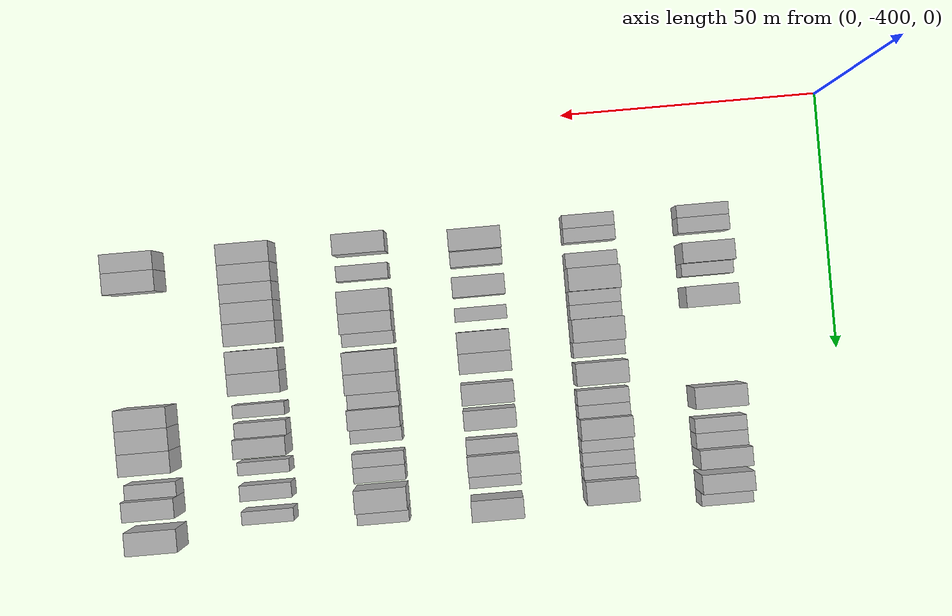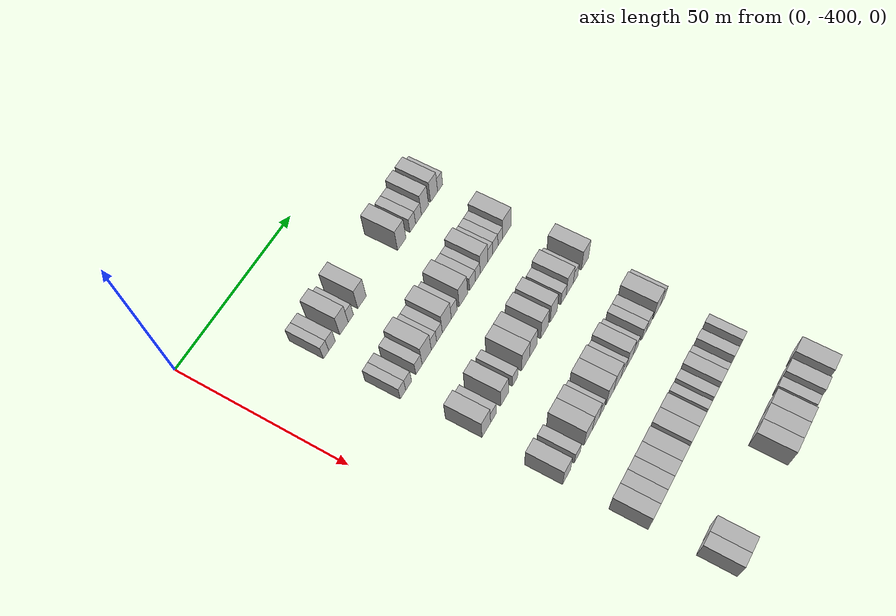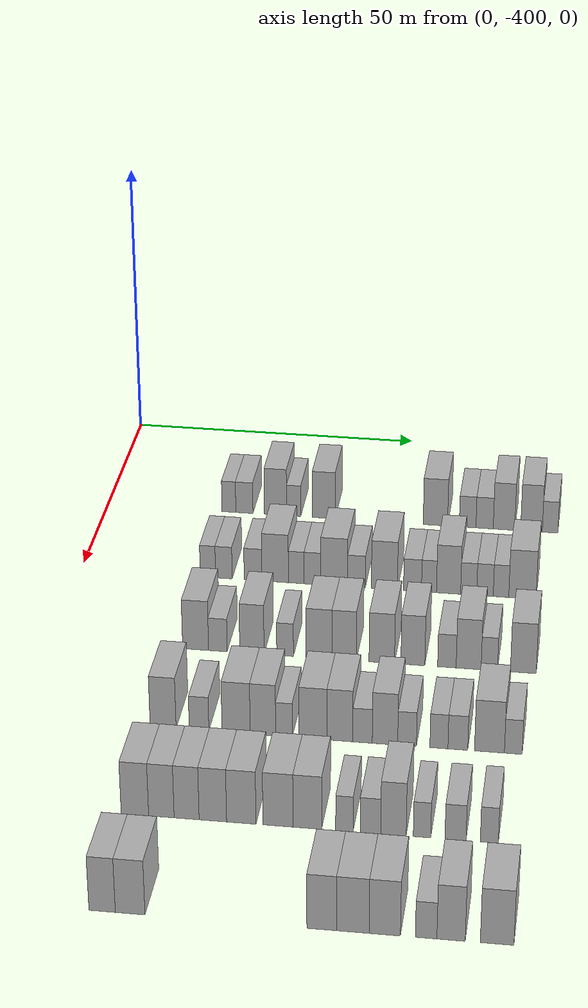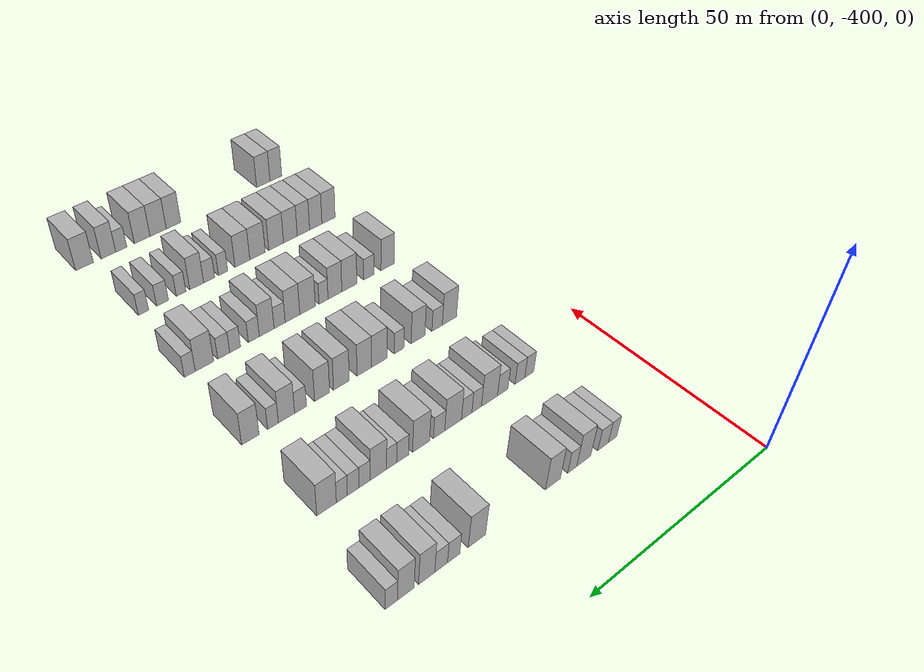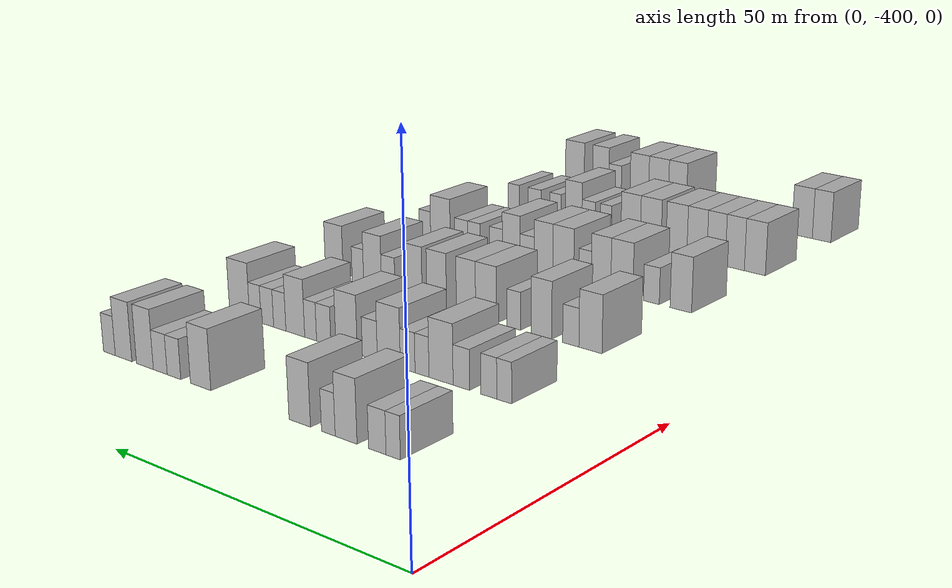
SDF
<sdf version="1.6">
 <world name="default">
  <model name="building_1">
   <static>1</static>
   <pose>25.0000 -378.7936 0 0.000000 0.000000 0.000000</pose>
   <link name="link">
    <pose>0 0 3.00 0 0 0</pose>
    <collision name="collision"><geometry><box><size>10.0000 2.4128 6.0000</size></box></geometry></collision>
    <visual name="visual">
     <cast_shadows>0</cast_shadows>
     <geometry><box><size>10.0000 2.4128 6.0000</size></box></geometry>
     <material>
      <script>
       <uri>model://HANNAS_wall/materials/scripts</uri>
       <uri>model://HANNAS_wall/materials/textures</uri>
       <name>vrc/HANNAS_wall</name>
      </script>
     </material>
    </visual>
   </link>
  </model>
  <model name="building_2">
   <static>1</static>
   <pose>25.0000 -376.0949 0 0.000000 0.000000 0.000000</pose>
   <link name="link">
    <pose>0 0 3.00 0 0 0</pose>
    <collision name="collision"><geometry><box><size>10.0000 2.9847 6.0000</size></box></geometry></collision>
    <visual name="visual">
     <cast_shadows>0</cast_shadows>
     <geometry><box><size>10.0000 2.9847 6.0000</size></box></geometry>
     <material>
      <script>
       <uri>model://HANNAS_wall/materials/scripts</uri>
       <uri>model://HANNAS_wall/materials/textures</uri>
       <name>vrc/HANNAS_wall</name>
      </script>
     </material>
    </visual>
   </link>
  </model>
  <model name="building_3">
   <static>1</static>
   <pose>25.0000 -370.6776 0 0.000000 0.000000 0.000000</pose>
   <link name="link">
    <pose>0 0 4.50 0 0 0</pose>
    <collision name="collision"><geometry><box><size>10.0000 3.8498 9.0000</size></box></geometry></collision>
    <visual name="visual">
     <cast_shadows>0</cast_shadows>
     <geometry><box><size>10.0000 3.8498 9.0000</size></box></geometry>
     <material>
      <script>
       <uri>model://HANNAS_wall/materials/scripts</uri>
       <uri>model://HANNAS_wall/materials/textures</uri>
       <name>vrc/HANNAS_wall</name>
      </script>
     </material>
    </visual>
   </link>
  </model>
  <model name="building_4">
   <static>1</static>
   <pose>25.0000 -367.5244 0 0.000000 0.000000 0.000000</pose>
   <link name="link">
    <pose>0 0 3.00 0 0 0</pose>
    <collision name="collision"><geometry><box><size>10.0000 2.4567 6.0000</size></box></geometry></collision>
    <visual name="visual">
     <cast_shadows>0</cast_shadows>
     <geometry><box><size>10.0000 2.4567 6.0000</size></box></geometry>
     <material>
      <script>
       <uri>model://HANNAS_wall/materials/scripts</uri>
       <uri>model://HANNAS_wall/materials/textures</uri>
       <name>vrc/HANNAS_wall</name>
      </script>
     </material>
    </visual>
   </link>
  </model>
  <model name="building_5">
   <static>1</static>
   <pose>25.0000 -362.3169 0 0.000000 0.000000 0.000000</pose>
   <link name="link">
    <pose>0 0 4.50 0 0 0</pose>
    <collision name="collision"><geometry><box><size>10.0000 3.9582 9.0000</size></box></geometry></collision>
    <visual name="visual">
     <cast_shadows>0</cast_shadows>
     <geometry><box><size>10.0000 3.9582 9.0000</size></box></geometry>
     <material>
      <script>
       <uri>model://HANNAS_wall/materials/scripts</uri>
       <uri>model://HANNAS_wall/materials/textures</uri>
       <name>vrc/HANNAS_wall</name>
      </script>
     </material>
    </visual>
   </link>
  </model>
  <model name="building_6">
   <static>1</static>
   <pose>25.0000 -343.0834 0 0.000000 0.000000 0.000000</pose>
   <link name="link">
    <pose>0 0 4.50 0 0 0</pose>
    <collision name="collision"><geometry><box><size>10.0000 4.1696 9.0000</size></box></geometry></collision>
    <visual name="visual">
     <cast_shadows>0</cast_shadows>
     <geometry><box><size>10.0000 4.1696 9.0000</size></box></geometry>
     <material>
      <script>
       <uri>model://HANNAS_wall/materials/scripts</uri>
       <uri>model://HANNAS_wall/materials/textures</uri>
       <name>vrc/HANNAS_wall</name>
      </script>
     </material>
    </visual>
   </link>
  </model>
  <model name="building_7">
   <static>1</static>
   <pose>25.0000 -337.5712 0 0.000000 0.000000 0.000000</pose>
   <link name="link">
    <pose>0 0 3.00 0 0 0</pose>
    <collision name="collision"><geometry><box><size>10.0000 2.8549 6.0000</size></box></geometry></collision>
    <visual name="visual">
     <cast_shadows>0</cast_shadows>
     <geometry><box><size>10.0000 2.8549 6.0000</size></box></geometry>
     <material>
      <script>
       <uri>model://HANNAS_wall/materials/scripts</uri>
       <uri>model://HANNAS_wall/materials/textures</uri>
       <name>vrc/HANNAS_wall</name>
      </script>
     </material>
    </visual>
   </link>
  </model>
  <model name="building_8">
   <static>1</static>
   <pose>25.0000 -334.6668 0 0.000000 0.000000 0.000000</pose>
   <link name="link">
    <pose>0 0 3.00 0 0 0</pose>
    <collision name="collision"><geometry><box><size>10.0000 2.9538 6.0000</size></box></geometry></collision>
    <visual name="visual">
     <cast_shadows>0</cast_shadows>
     <geometry><box><size>10.0000 2.9538 6.0000</size></box></geometry>
     <material>
      <script>
       <uri>model://HANNAS_wall/materials/scripts</uri>
       <uri>model://HANNAS_wall/materials/textures</uri>
       <name>vrc/HANNAS_wall</name>
      </script>
     </material>
    </visual>
   </link>
  </model>
  <model name="building_9">
   <static>1</static>
   <pose>25.0000 -331.3615 0 0.000000 0.000000 0.000000</pose>
   <link name="link">
    <pose>0 0 4.50 0 0 0</pose>
    <collision name="collision"><geometry><box><size>10.0000 3.6569 9.0000</size></box></geometry></collision>
    <visual name="visual">
     <cast_shadows>0</cast_shadows>
     <geometry><box><size>10.0000 3.6569 9.0000</size></box></geometry>
     <material>
      <script>
       <uri>model://HANNAS_wall/materials/scripts</uri>
       <uri>model://HANNAS_wall/materials/textures</uri>
       <name>vrc/HANNAS_wall</name>
      </script>
     </material>
    </visual>
   </link>
  </model>
  <model name="building_10">
   <static>1</static>
   <pose>25.0000 -326.6936 0 0.000000 0.000000 0.000000</pose>
   <link name="link">
    <pose>0 0 4.50 0 0 0</pose>
    <collision name="collision"><geometry><box><size>10.0000 3.6789 9.0000</size></box></geometry></collision>
    <visual name="visual">
     <cast_shadows>0</cast_shadows>
     <geometry><box><size>10.0000 3.6789 9.0000</size></box></geometry>
     <material>
      <script>
       <uri>model://HANNAS_wall/materials/scripts</uri>
       <uri>model://HANNAS_wall/materials/textures</uri>
       <name>vrc/HANNAS_wall</name>
      </script>
     </material>
    </visual>
   </link>
  </model>
  <model name="building_11">
   <static>1</static>
   <pose>25.0000 -323.5289 0 0.000000 0.000000 0.000000</pose>
   <link name="link">
    <pose>0 0 3.00 0 0 0</pose>
    <collision name="collision"><geometry><box><size>10.0000 2.6506 6.0000</size></box></geometry></collision>
    <visual name="visual">
     <cast_shadows>0</cast_shadows>
     <geometry><box><size>10.0000 2.6506 6.0000</size></box></geometry>
     <material>
      <script>
       <uri>model://HANNAS_wall/materials/scripts</uri>
       <uri>model://HANNAS_wall/materials/textures</uri>
       <name>vrc/HANNAS_wall</name>
      </script>
     </material>
    </visual>
   </link>
  </model>
  <model name="building_186">
   <static>1</static>
   <pose>47.0000 -378.7192 0 0.000000 0.000000 0.000000</pose>
   <link name="link">
    <pose>0 0 3.00 0 0 0</pose>
    <collision name="collision"><geometry><box><size>10.0000 2.5617 6.0000</size></box></geometry></collision>
    <visual name="visual">
     <cast_shadows>0</cast_shadows>
     <geometry><box><size>10.0000 2.5617 6.0000</size></box></geometry>
     <material>
      <script>
       <uri>model://HANNAS_wall/materials/scripts</uri>
       <uri>model://HANNAS_wall/materials/textures</uri>
       <name>vrc/HANNAS_wall</name>
      </script>
     </material>
    </visual>
   </link>
  </model>
  <model name="building_187">
   <static>1</static>
   <pose>47.0000 -376.0518 0 0.000000 0.000000 0.000000</pose>
   <link name="link">
    <pose>0 0 3.00 0 0 0</pose>
    <collision name="collision"><geometry><box><size>10.0000 2.7729 6.0000</size></box></geometry></collision>
    <visual name="visual">
     <cast_shadows>0</cast_shadows>
     <geometry><box><size>10.0000 2.7729 6.0000</size></box></geometry>
     <material>
      <script>
       <uri>model://HANNAS_wall/materials/scripts</uri>
       <uri>model://HANNAS_wall/materials/textures</uri>
       <name>vrc/HANNAS_wall</name>
      </script>
     </material>
    </visual>
   </link>
  </model>
  <model name="building_188">
   <static>1</static>
   <pose>47.0000 -371.1877 0 0.000000 0.000000 0.000000</pose>
   <link name="link">
    <pose>0 0 3.00 0 0 0</pose>
    <collision name="collision"><geometry><box><size>10.0000 2.9553 6.0000</size></box></geometry></collision>
    <visual name="visual">
     <cast_shadows>0</cast_shadows>
     <geometry><box><size>10.0000 2.9553 6.0000</size></box></geometry>
     <material>
      <script>
       <uri>model://HANNAS_wall/materials/scripts</uri>
       <uri>model://HANNAS_wall/materials/textures</uri>
       <name>vrc/HANNAS_wall</name>
      </script>
     </material>
    </visual>
   </link>
  </model>
  <model name="building_189">
   <static>1</static>
   <pose>47.0000 -367.5111 0 0.000000 0.000000 0.000000</pose>
   <link name="link">
    <pose>0 0 4.50 0 0 0</pose>
    <collision name="collision"><geometry><box><size>10.0000 4.3981 9.0000</size></box></geometry></collision>
    <visual name="visual">
     <cast_shadows>0</cast_shadows>
     <geometry><box><size>10.0000 4.3981 9.0000</size></box></geometry>
     <material>
      <script>
       <uri>model://HANNAS_wall/materials/scripts</uri>
       <uri>model://HANNAS_wall/materials/textures</uri>
       <name>vrc/HANNAS_wall</name>
      </script>
     </material>
    </visual>
   </link>
  </model>
  <model name="building_190">
   <static>1</static>
   <pose>47.0000 -364.0126 0 0.000000 0.000000 0.000000</pose>
   <link name="link">
    <pose>0 0 3.00 0 0 0</pose>
    <collision name="collision"><geometry><box><size>10.0000 2.5988 6.0000</size></box></geometry></collision>
    <visual name="visual">
     <cast_shadows>0</cast_shadows>
     <geometry><box><size>10.0000 2.5988 6.0000</size></box></geometry>
     <material>
      <script>
       <uri>model://HANNAS_wall/materials/scripts</uri>
       <uri>model://HANNAS_wall/materials/textures</uri>
       <name>vrc/HANNAS_wall</name>
      </script>
     </material>
    </visual>
   </link>
  </model>
  <model name="building_191">
   <static>1</static>
   <pose>47.0000 -361.3273 0 0.000000 0.000000 0.000000</pose>
   <link name="link">
    <pose>0 0 3.00 0 0 0</pose>
    <collision name="collision"><geometry><box><size>10.0000 2.7719 6.0000</size></box></geometry></collision>
    <visual name="visual">
     <cast_shadows>0</cast_shadows>
     <geometry><box><size>10.0000 2.7719 6.0000</size></box></geometry>
     <material>
      <script>
       <uri>model://HANNAS_wall/materials/scripts</uri>
       <uri>model://HANNAS_wall/materials/textures</uri>
       <name>vrc/HANNAS_wall</name>
      </script>
     </material>
    </visual>
   </link>
  </model>
  <model name="building_192">
   <static>1</static>
   <pose>47.0000 -357.7341 0 0.000000 0.000000 0.000000</pose>
   <link name="link">
    <pose>0 0 4.50 0 0 0</pose>
    <collision name="collision"><geometry><box><size>10.0000 4.4146 9.0000</size></box></geometry></collision>
    <visual name="visual">
     <cast_shadows>0</cast_shadows>
     <geometry><box><size>10.0000 4.4146 9.0000</size></box></geometry>
     <material>
      <script>
       <uri>model://HANNAS_wall/materials/scripts</uri>
       <uri>model://HANNAS_wall/materials/textures</uri>
       <name>vrc/HANNAS_wall</name>
      </script>
     </material>
    </visual>
   </link>
  </model>
  <model name="building_193">
   <static>1</static>
   <pose>47.0000 -354.0647 0 0.000000 0.000000 0.000000</pose>
   <link name="link">
    <pose>0 0 3.00 0 0 0</pose>
    <collision name="collision"><geometry><box><size>10.0000 2.9242 6.0000</size></box></geometry></collision>
    <visual name="visual">
     <cast_shadows>0</cast_shadows>
     <geometry><box><size>10.0000 2.9242 6.0000</size></box></geometry>
     <material>
      <script>
       <uri>model://HANNAS_wall/materials/scripts</uri>
       <uri>model://HANNAS_wall/materials/textures</uri>
       <name>vrc/HANNAS_wall</name>
      </script>
     </material>
    </visual>
   </link>
  </model>
  <model name="building_194">
   <static>1</static>
   <pose>47.0000 -349.4579 0 0.000000 0.000000 0.000000</pose>
   <link name="link">
    <pose>0 0 4.50 0 0 0</pose>
    <collision name="collision"><geometry><box><size>10.0000 4.2893 9.0000</size></box></geometry></collision>
    <visual name="visual">
     <cast_shadows>0</cast_shadows>
     <geometry><box><size>10.0000 4.2893 9.0000</size></box></geometry>
     <material>
      <script>
       <uri>model://HANNAS_wall/materials/scripts</uri>
       <uri>model://HANNAS_wall/materials/textures</uri>
       <name>vrc/HANNAS_wall</name>
      </script>
     </material>
    </visual>
   </link>
  </model>
  <model name="building_195">
   <static>1</static>
   <pose>47.0000 -344.8406 0 0.000000 0.000000 0.000000</pose>
   <link name="link">
    <pose>0 0 3.00 0 0 0</pose>
    <collision name="collision"><geometry><box><size>10.0000 2.9454 6.0000</size></box></geometry></collision>
    <visual name="visual">
     <cast_shadows>0</cast_shadows>
     <geometry><box><size>10.0000 2.9454 6.0000</size></box></geometry>
     <material>
      <script>
       <uri>model://HANNAS_wall/materials/scripts</uri>
       <uri>model://HANNAS_wall/materials/textures</uri>
       <name>vrc/HANNAS_wall</name>
      </script>
     </material>
    </visual>
   </link>
  </model>
  <model name="building_196">
   <static>1</static>
   <pose>47.0000 -342.1392 0 0.000000 0.000000 0.000000</pose>
   <link name="link">
    <pose>0 0 3.00 0 0 0</pose>
    <collision name="collision"><geometry><box><size>10.0000 2.4574 6.0000</size></box></geometry></collision>
    <visual name="visual">
     <cast_shadows>0</cast_shadows>
     <geometry><box><size>10.0000 2.4574 6.0000</size></box></geometry>
     <material>
      <script>
       <uri>model://HANNAS_wall/materials/scripts</uri>
       <uri>model://HANNAS_wall/materials/textures</uri>
       <name>vrc/HANNAS_wall</name>
      </script>
     </material>
    </visual>
   </link>
  </model>
  <model name="building_197">
   <static>1</static>
   <pose>47.0000 -338.9348 0 0.000000 0.000000 0.000000</pose>
   <link name="link">
    <pose>0 0 4.50 0 0 0</pose>
    <collision name="collision"><geometry><box><size>10.0000 3.9512 9.0000</size></box></geometry></collision>
    <visual name="visual">
     <cast_shadows>0</cast_shadows>
     <geometry><box><size>10.0000 3.9512 9.0000</size></box></geometry>
     <material>
      <script>
       <uri>model://HANNAS_wall/materials/scripts</uri>
       <uri>model://HANNAS_wall/materials/textures</uri>
       <name>vrc/HANNAS_wall</name>
      </script>
     </material>
    </visual>
   </link>
  </model>
  <model name="building_198">
   <static>1</static>
   <pose>47.0000 -335.6443 0 0.000000 0.000000 0.000000</pose>
   <link name="link">
    <pose>0 0 3.00 0 0 0</pose>
    <collision name="collision"><geometry><box><size>10.0000 2.6298 6.0000</size></box></geometry></collision>
    <visual name="visual">
     <cast_shadows>0</cast_shadows>
     <geometry><box><size>10.0000 2.6298 6.0000</size></box></geometry>
     <material>
      <script>
       <uri>model://HANNAS_wall/materials/scripts</uri>
       <uri>model://HANNAS_wall/materials/textures</uri>
       <name>vrc/HANNAS_wall</name>
      </script>
     </material>
    </visual>
   </link>
  </model>
  <model name="building_199">
   <static>1</static>
   <pose>47.0000 -332.9824 0 0.000000 0.000000 0.000000</pose>
   <link name="link">
    <pose>0 0 3.00 0 0 0</pose>
    <collision name="collision"><geometry><box><size>10.0000 2.6941 6.0000</size></box></geometry></collision>
    <visual name="visual">
     <cast_shadows>0</cast_shadows>
     <geometry><box><size>10.0000 2.6941 6.0000</size></box></geometry>
     <material>
      <script>
       <uri>model://HANNAS_wall/materials/scripts</uri>
       <uri>model://HANNAS_wall/materials/textures</uri>
       <name>vrc/HANNAS_wall</name>
      </script>
     </material>
    </visual>
   </link>
  </model>
  <model name="building_200">
   <static>1</static>
   <pose>47.0000 -330.3713 0 0.000000 0.000000 0.000000</pose>
   <link name="link">
    <pose>0 0 3.00 0 0 0</pose>
    <collision name="collision"><geometry><box><size>10.0000 2.5281 6.0000</size></box></geometry></collision>
    <visual name="visual">
     <cast_shadows>0</cast_shadows>
     <geometry><box><size>10.0000 2.5281 6.0000</size></box></geometry>
     <material>
      <script>
       <uri>model://HANNAS_wall/materials/scripts</uri>
       <uri>model://HANNAS_wall/materials/textures</uri>
       <name>vrc/HANNAS_wall</name>
      </script>
     </material>
    </visual>
   </link>
  </model>
  <model name="building_201">
   <static>1</static>
   <pose>47.0000 -326.8892 0 0.000000 0.000000 0.000000</pose>
   <link name="link">
    <pose>0 0 4.50 0 0 0</pose>
    <collision name="collision"><geometry><box><size>10.0000 4.4361 9.0000</size></box></geometry></collision>
    <visual name="visual">
     <cast_shadows>0</cast_shadows>
     <geometry><box><size>10.0000 4.4361 9.0000</size></box></geometry>
     <material>
      <script>
       <uri>model://HANNAS_wall/materials/scripts</uri>
       <uri>model://HANNAS_wall/materials/textures</uri>
       <name>vrc/HANNAS_wall</name>
      </script>
     </material>
    </visual>
   </link>
  </model>
  <model name="building_377">
   <static>1</static>
   <pose>69.0000 -376.9340 0 0.000000 0.000000 0.000000</pose>
   <link name="link">
    <pose>0 0 4.50 0 0 0</pose>
    <collision name="collision"><geometry><box><size>10.0000 4.1320 9.0000</size></box></geometry></collision>
    <visual name="visual">
     <cast_shadows>0</cast_shadows>
     <geometry><box><size>10.0000 4.1320 9.0000</size></box></geometry>
     <material>
      <script>
       <uri>model://HANNAS_wall/materials/scripts</uri>
       <uri>model://HANNAS_wall/materials/textures</uri>
       <name>vrc/HANNAS_wall</name>
      </script>
     </material>
    </visual>
   </link>
  </model>
  <model name="building_378">
   <static>1</static>
   <pose>69.0000 -373.3848 0 0.000000 0.000000 0.000000</pose>
   <link name="link">
    <pose>0 0 3.00 0 0 0</pose>
    <collision name="collision"><geometry><box><size>10.0000 2.9664 6.0000</size></box></geometry></collision>
    <visual name="visual">
     <cast_shadows>0</cast_shadows>
     <geometry><box><size>10.0000 2.9664 6.0000</size></box></geometry>
     <material>
      <script>
       <uri>model://HANNAS_wall/materials/scripts</uri>
       <uri>model://HANNAS_wall/materials/textures</uri>
       <name>vrc/HANNAS_wall</name>
      </script>
     </material>
    </visual>
   </link>
  </model>
  <model name="building_379">
   <static>1</static>
   <pose>69.0000 -367.9699 0 0.000000 0.000000 0.000000</pose>
   <link name="link">
    <pose>0 0 4.50 0 0 0</pose>
    <collision name="collision"><geometry><box><size>10.0000 3.8634 9.0000</size></box></geometry></collision>
    <visual name="visual">
     <cast_shadows>0</cast_shadows>
     <geometry><box><size>10.0000 3.8634 9.0000</size></box></geometry>
     <material>
      <script>
       <uri>model://HANNAS_wall/materials/scripts</uri>
       <uri>model://HANNAS_wall/materials/textures</uri>
       <name>vrc/HANNAS_wall</name>
      </script>
     </material>
    </visual>
   </link>
  </model>
  <model name="building_380">
   <static>1</static>
   <pose>69.0000 -362.7179 0 0.000000 0.000000 0.000000</pose>
   <link name="link">
    <pose>0 0 3.00 0 0 0</pose>
    <collision name="collision"><geometry><box><size>10.0000 2.6406 6.0000</size></box></geometry></collision>
    <visual name="visual">
     <cast_shadows>0</cast_shadows>
     <geometry><box><size>10.0000 2.6406 6.0000</size></box></geometry>
     <material>
      <script>
       <uri>model://HANNAS_wall/materials/scripts</uri>
       <uri>model://HANNAS_wall/materials/textures</uri>
       <name>vrc/HANNAS_wall</name>
      </script>
     </material>
    </visual>
   </link>
  </model>
  <model name="building_381">
   <static>1</static>
   <pose>69.0000 -357.3632 0 0.000000 0.000000 0.000000</pose>
   <link name="link">
    <pose>0 0 4.50 0 0 0</pose>
    <collision name="collision"><geometry><box><size>10.0000 4.0687 9.0000</size></box></geometry></collision>
    <visual name="visual">
     <cast_shadows>0</cast_shadows>
     <geometry><box><size>10.0000 4.0687 9.0000</size></box></geometry>
     <material>
      <script>
       <uri>model://HANNAS_wall/materials/scripts</uri>
       <uri>model://HANNAS_wall/materials/textures</uri>
       <name>vrc/HANNAS_wall</name>
      </script>
     </material>
    </visual>
   </link>
  </model>
  <model name="building_382">
   <static>1</static>
   <pose>69.0000 -353.4086 0 0.000000 0.000000 0.000000</pose>
   <link name="link">
    <pose>0 0 4.50 0 0 0</pose>
    <collision name="collision"><geometry><box><size>10.0000 3.8404 9.0000</size></box></geometry></collision>
    <visual name="visual">
     <cast_shadows>0</cast_shadows>
     <geometry><box><size>10.0000 3.8404 9.0000</size></box></geometry>
     <material>
      <script>
       <uri>model://HANNAS_wall/materials/scripts</uri>
       <uri>model://HANNAS_wall/materials/textures</uri>
       <name>vrc/HANNAS_wall</name>
      </script>
     </material>
    </visual>
   </link>
  </model>
  <model name="building_383">
   <static>1</static>
   <pose>69.0000 -347.4881 0 0.000000 0.000000 0.000000</pose>
   <link name="link">
    <pose>0 0 4.50 0 0 0</pose>
    <collision name="collision"><geometry><box><size>10.0000 4.0006 9.0000</size></box></geometry></collision>
    <visual name="visual">
     <cast_shadows>0</cast_shadows>
     <geometry><box><size>10.0000 4.0006 9.0000</size></box></geometry>
     <material>
      <script>
       <uri>model://HANNAS_wall/materials/scripts</uri>
       <uri>model://HANNAS_wall/materials/textures</uri>
       <name>vrc/HANNAS_wall</name>
      </script>
     </material>
    </visual>
   </link>
  </model>
  <model name="building_384">
   <static>1</static>
   <pose>69.0000 -342.6153 0 0.000000 0.000000 0.000000</pose>
   <link name="link">
    <pose>0 0 4.50 0 0 0</pose>
    <collision name="collision"><geometry><box><size>10.0000 3.7449 9.0000</size></box></geometry></collision>
    <visual name="visual">
     <cast_shadows>0</cast_shadows>
     <geometry><box><size>10.0000 3.7449 9.0000</size></box></geometry>
     <material>
      <script>
       <uri>model://HANNAS_wall/materials/scripts</uri>
       <uri>model://HANNAS_wall/materials/textures</uri>
       <name>vrc/HANNAS_wall</name>
      </script>
     </material>
    </visual>
   </link>
  </model>
  <model name="building_385">
   <static>1</static>
   <pose>69.0000 -337.2987 0 0.000000 0.000000 0.000000</pose>
   <link name="link">
    <pose>0 0 3.00 0 0 0</pose>
    <collision name="collision"><geometry><box><size>10.0000 2.8884 6.0000</size></box></geometry></collision>
    <visual name="visual">
     <cast_shadows>0</cast_shadows>
     <geometry><box><size>10.0000 2.8884 6.0000</size></box></geometry>
     <material>
      <script>
       <uri>model://HANNAS_wall/materials/scripts</uri>
       <uri>model://HANNAS_wall/materials/textures</uri>
       <name>vrc/HANNAS_wall</name>
      </script>
     </material>
    </visual>
   </link>
  </model>
  <model name="building_386">
   <static>1</static>
   <pose>69.0000 -333.9094 0 0.000000 0.000000 0.000000</pose>
   <link name="link">
    <pose>0 0 4.50 0 0 0</pose>
    <collision name="collision"><geometry><box><size>10.0000 3.8902 9.0000</size></box></geometry></collision>
    <visual name="visual">
     <cast_shadows>0</cast_shadows>
     <geometry><box><size>10.0000 3.8902 9.0000</size></box></geometry>
     <material>
      <script>
       <uri>model://HANNAS_wall/materials/scripts</uri>
       <uri>model://HANNAS_wall/materials/textures</uri>
       <name>vrc/HANNAS_wall</name>
      </script>
     </material>
    </visual>
   </link>
  </model>
  <model name="building_387">
   <static>1</static>
   <pose>69.0000 -330.6936 0 0.000000 0.000000 0.000000</pose>
   <link name="link">
    <pose>0 0 3.00 0 0 0</pose>
    <collision name="collision"><geometry><box><size>10.0000 2.5415 6.0000</size></box></geometry></collision>
    <visual name="visual">
     <cast_shadows>0</cast_shadows>
     <geometry><box><size>10.0000 2.5415 6.0000</size></box></geometry>
     <material>
      <script>
       <uri>model://HANNAS_wall/materials/scripts</uri>
       <uri>model://HANNAS_wall/materials/textures</uri>
       <name>vrc/HANNAS_wall</name>
      </script>
     </material>
    </visual>
   </link>
  </model>
  <model name="building_388">
   <static>1</static>
   <pose>69.0000 -325.4207 0 0.000000 0.000000 0.000000</pose>
   <link name="link">
    <pose>0 0 4.50 0 0 0</pose>
    <collision name="collision"><geometry><box><size>10.0000 4.0043 9.0000</size></box></geometry></collision>
    <visual name="visual">
     <cast_shadows>0</cast_shadows>
     <geometry><box><size>10.0000 4.0043 9.0000</size></box></geometry>
     <material>
      <script>
       <uri>model://HANNAS_wall/materials/scripts</uri>
       <uri>model://HANNAS_wall/materials/textures</uri>
       <name>vrc/HANNAS_wall</name>
      </script>
     </material>
    </visual>
   </link>
  </model>
  <model name="building_567">
   <static>1</static>
   <pose>91.0000 -378.0281 0 0.000000 0.000000 0.000000</pose>
   <link name="link">
    <pose>0 0 4.50 0 0 0</pose>
    <collision name="collision"><geometry><box><size>10.0000 3.9438 9.0000</size></box></geometry></collision>
    <visual name="visual">
     <cast_shadows>0</cast_shadows>
     <geometry><box><size>10.0000 3.9438 9.0000</size></box></geometry>
     <material>
      <script>
       <uri>model://HANNAS_wall/materials/scripts</uri>
       <uri>model://HANNAS_wall/materials/textures</uri>
       <name>vrc/HANNAS_wall</name>
      </script>
     </material>
    </visual>
   </link>
  </model>
  <model name="building_568">
   <static>1</static>
   <pose>91.0000 -372.5694 0 0.000000 0.000000 0.000000</pose>
   <link name="link">
    <pose>0 0 3.00 0 0 0</pose>
    <collision name="collision"><geometry><box><size>10.0000 2.9736 6.0000</size></box></geometry></collision>
    <visual name="visual">
     <cast_shadows>0</cast_shadows>
     <geometry><box><size>10.0000 2.9736 6.0000</size></box></geometry>
     <material>
      <script>
       <uri>model://HANNAS_wall/materials/scripts</uri>
       <uri>model://HANNAS_wall/materials/textures</uri>
       <name>vrc/HANNAS_wall</name>
      </script>
     </material>
    </visual>
   </link>
  </model>
  <model name="building_569">
   <static>1</static>
   <pose>91.0000 -366.9530 0 0.000000 0.000000 0.000000</pose>
   <link name="link">
    <pose>0 0 4.50 0 0 0</pose>
    <collision name="collision"><geometry><box><size>10.0000 4.2592 9.0000</size></box></geometry></collision>
    <visual name="visual">
     <cast_shadows>0</cast_shadows>
     <geometry><box><size>10.0000 4.2592 9.0000</size></box></geometry>
     <material>
      <script>
       <uri>model://HANNAS_wall/materials/scripts</uri>
       <uri>model://HANNAS_wall/materials/textures</uri>
       <name>vrc/HANNAS_wall</name>
      </script>
     </material>
    </visual>
   </link>
  </model>
  <model name="building_570">
   <static>1</static>
   <pose>91.0000 -362.9038 0 0.000000 0.000000 0.000000</pose>
   <link name="link">
    <pose>0 0 4.50 0 0 0</pose>
    <collision name="collision"><geometry><box><size>10.0000 3.8391 9.0000</size></box></geometry></collision>
    <visual name="visual">
     <cast_shadows>0</cast_shadows>
     <geometry><box><size>10.0000 3.8391 9.0000</size></box></geometry>
     <material>
      <script>
       <uri>model://HANNAS_wall/materials/scripts</uri>
       <uri>model://HANNAS_wall/materials/textures</uri>
       <name>vrc/HANNAS_wall</name>
      </script>
     </material>
    </visual>
   </link>
  </model>
  <model name="building_571">
   <static>1</static>
   <pose>91.0000 -359.7357 0 0.000000 0.000000 0.000000</pose>
   <link name="link">
    <pose>0 0 3.00 0 0 0</pose>
    <collision name="collision"><geometry><box><size>10.0000 2.4970 6.0000</size></box></geometry></collision>
    <visual name="visual">
     <cast_shadows>0</cast_shadows>
     <geometry><box><size>10.0000 2.4970 6.0000</size></box></geometry>
     <material>
      <script>
       <uri>model://HANNAS_wall/materials/scripts</uri>
       <uri>model://HANNAS_wall/materials/textures</uri>
       <name>vrc/HANNAS_wall</name>
      </script>
     </material>
    </visual>
   </link>
  </model>
  <model name="building_572">
   <static>1</static>
   <pose>91.0000 -355.3924 0 0.000000 0.000000 0.000000</pose>
   <link name="link">
    <pose>0 0 4.50 0 0 0</pose>
    <collision name="collision"><geometry><box><size>10.0000 4.1896 9.0000</size></box></geometry></collision>
    <visual name="visual">
     <cast_shadows>0</cast_shadows>
     <geometry><box><size>10.0000 4.1896 9.0000</size></box></geometry>
     <material>
      <script>
       <uri>model://HANNAS_wall/materials/scripts</uri>
       <uri>model://HANNAS_wall/materials/textures</uri>
       <name>vrc/HANNAS_wall</name>
      </script>
     </material>
    </visual>
   </link>
  </model>
  <model name="building_573">
   <static>1</static>
   <pose>91.0000 -351.3592 0 0.000000 0.000000 0.000000</pose>
   <link name="link">
    <pose>0 0 4.50 0 0 0</pose>
    <collision name="collision"><geometry><box><size>10.0000 3.8768 9.0000</size></box></geometry></collision>
    <visual name="visual">
     <cast_shadows>0</cast_shadows>
     <geometry><box><size>10.0000 3.8768 9.0000</size></box></geometry>
     <material>
      <script>
       <uri>model://HANNAS_wall/materials/scripts</uri>
       <uri>model://HANNAS_wall/materials/textures</uri>
       <name>vrc/HANNAS_wall</name>
      </script>
     </material>
    </visual>
   </link>
  </model>
  <model name="building_574">
   <static>1</static>
   <pose>91.0000 -347.9619 0 0.000000 0.000000 0.000000</pose>
   <link name="link">
    <pose>0 0 3.00 0 0 0</pose>
    <collision name="collision"><geometry><box><size>10.0000 2.9179 6.0000</size></box></geometry></collision>
    <visual name="visual">
     <cast_shadows>0</cast_shadows>
     <geometry><box><size>10.0000 2.9179 6.0000</size></box></geometry>
     <material>
      <script>
       <uri>model://HANNAS_wall/materials/scripts</uri>
       <uri>model://HANNAS_wall/materials/textures</uri>
       <name>vrc/HANNAS_wall</name>
      </script>
     </material>
    </visual>
   </link>
  </model>
  <model name="building_575">
   <static>1</static>
   <pose>91.0000 -344.6039 0 0.000000 0.000000 0.000000</pose>
   <link name="link">
    <pose>0 0 4.50 0 0 0</pose>
    <collision name="collision"><geometry><box><size>10.0000 3.7979 9.0000</size></box></geometry></collision>
    <visual name="visual">
     <cast_shadows>0</cast_shadows>
     <geometry><box><size>10.0000 3.7979 9.0000</size></box></geometry>
     <material>
      <script>
       <uri>model://HANNAS_wall/materials/scripts</uri>
       <uri>model://HANNAS_wall/materials/textures</uri>
       <name>vrc/HANNAS_wall</name>
      </script>
     </material>
    </visual>
   </link>
  </model>
  <model name="building_576">
   <static>1</static>
   <pose>91.0000 -341.3113 0 0.000000 0.000000 0.000000</pose>
   <link name="link">
    <pose>0 0 3.00 0 0 0</pose>
    <collision name="collision"><geometry><box><size>10.0000 2.7873 6.0000</size></box></geometry></collision>
    <visual name="visual">
     <cast_shadows>0</cast_shadows>
     <geometry><box><size>10.0000 2.7873 6.0000</size></box></geometry>
     <material>
      <script>
       <uri>model://HANNAS_wall/materials/scripts</uri>
       <uri>model://HANNAS_wall/materials/textures</uri>
       <name>vrc/HANNAS_wall</name>
      </script>
     </material>
    </visual>
   </link>
  </model>
  <model name="building_577">
   <static>1</static>
   <pose>91.0000 -336.5750 0 0.000000 0.000000 0.000000</pose>
   <link name="link">
    <pose>0 0 3.00 0 0 0</pose>
    <collision name="collision"><geometry><box><size>10.0000 2.6854 6.0000</size></box></geometry></collision>
    <visual name="visual">
     <cast_shadows>0</cast_shadows>
     <geometry><box><size>10.0000 2.6854 6.0000</size></box></geometry>
     <material>
      <script>
       <uri>model://HANNAS_wall/materials/scripts</uri>
       <uri>model://HANNAS_wall/materials/textures</uri>
       <name>vrc/HANNAS_wall</name>
      </script>
     </material>
    </visual>
   </link>
  </model>
  <model name="building_578">
   <static>1</static>
   <pose>91.0000 -333.7658 0 0.000000 0.000000 0.000000</pose>
   <link name="link">
    <pose>0 0 3.00 0 0 0</pose>
    <collision name="collision"><geometry><box><size>10.0000 2.9330 6.0000</size></box></geometry></collision>
    <visual name="visual">
     <cast_shadows>0</cast_shadows>
     <geometry><box><size>10.0000 2.9330 6.0000</size></box></geometry>
     <material>
      <script>
       <uri>model://HANNAS_wall/materials/scripts</uri>
       <uri>model://HANNAS_wall/materials/textures</uri>
       <name>vrc/HANNAS_wall</name>
      </script>
     </material>
    </visual>
   </link>
  </model>
  <model name="building_579">
   <static>1</static>
   <pose>91.0000 -329.0882 0 0.000000 0.000000 0.000000</pose>
   <link name="link">
    <pose>0 0 4.50 0 0 0</pose>
    <collision name="collision"><geometry><box><size>10.0000 4.4221 9.0000</size></box></geometry></collision>
    <visual name="visual">
     <cast_shadows>0</cast_shadows>
     <geometry><box><size>10.0000 4.4221 9.0000</size></box></geometry>
     <material>
      <script>
       <uri>model://HANNAS_wall/materials/scripts</uri>
       <uri>model://HANNAS_wall/materials/textures</uri>
       <name>vrc/HANNAS_wall</name>
      </script>
     </material>
    </visual>
   </link>
  </model>
  <model name="building_580">
   <static>1</static>
   <pose>91.0000 -325.5686 0 0.000000 0.000000 0.000000</pose>
   <link name="link">
    <pose>0 0 3.00 0 0 0</pose>
    <collision name="collision"><geometry><box><size>10.0000 2.6173 6.0000</size></box></geometry></collision>
    <visual name="visual">
     <cast_shadows>0</cast_shadows>
     <geometry><box><size>10.0000 2.6173 6.0000</size></box></geometry>
     <material>
      <script>
       <uri>model://HANNAS_wall/materials/scripts</uri>
       <uri>model://HANNAS_wall/materials/textures</uri>
       <name>vrc/HANNAS_wall</name>
      </script>
     </material>
    </visual>
   </link>
  </model>
  <model name="building_750">
   <static>1</static>
   <pose>113.0000 -378.0145 0 0.000000 0.000000 0.000000</pose>
   <link name="link">
    <pose>0 0 4.50 0 0 0</pose>
    <collision name="collision"><geometry><box><size>10.0000 3.9710 9.0000</size></box></geometry></collision>
    <visual name="visual">
     <cast_shadows>0</cast_shadows>
     <geometry><box><size>10.0000 3.9710 9.0000</size></box></geometry>
     <material>
      <script>
       <uri>model://HANNAS_wall/materials/scripts</uri>
       <uri>model://HANNAS_wall/materials/textures</uri>
       <name>vrc/HANNAS_wall</name>
      </script>
     </material>
    </visual>
   </link>
  </model>
  <model name="building_751">
   <static>1</static>
   <pose>113.0000 -374.1874 0 0.000000 0.000000 0.000000</pose>
   <link name="link">
    <pose>0 0 4.50 0 0 0</pose>
    <collision name="collision"><geometry><box><size>10.0000 3.6831 9.0000</size></box></geometry></collision>
    <visual name="visual">
     <cast_shadows>0</cast_shadows>
     <geometry><box><size>10.0000 3.6831 9.0000</size></box></geometry>
     <material>
      <script>
       <uri>model://HANNAS_wall/materials/scripts</uri>
       <uri>model://HANNAS_wall/materials/textures</uri>
       <name>vrc/HANNAS_wall</name>
      </script>
     </material>
    </visual>
   </link>
  </model>
  <model name="building_752">
   <static>1</static>
   <pose>113.0000 -370.5457 0 0.000000 0.000000 0.000000</pose>
   <link name="link">
    <pose>0 0 4.50 0 0 0</pose>
    <collision name="collision"><geometry><box><size>10.0000 3.6003 9.0000</size></box></geometry></collision>
    <visual name="visual">
     <cast_shadows>0</cast_shadows>
     <geometry><box><size>10.0000 3.6003 9.0000</size></box></geometry>
     <material>
      <script>
       <uri>model://HANNAS_wall/materials/scripts</uri>
       <uri>model://HANNAS_wall/materials/textures</uri>
       <name>vrc/HANNAS_wall</name>
      </script>
     </material>
    </visual>
   </link>
  </model>
  <model name="building_753">
   <static>1</static>
   <pose>113.0000 -366.7694 0 0.000000 0.000000 0.000000</pose>
   <link name="link">
    <pose>0 0 4.50 0 0 0</pose>
    <collision name="collision"><geometry><box><size>10.0000 3.9524 9.0000</size></box></geometry></collision>
    <visual name="visual">
     <cast_shadows>0</cast_shadows>
     <geometry><box><size>10.0000 3.9524 9.0000</size></box></geometry>
     <material>
      <script>
       <uri>model://HANNAS_wall/materials/scripts</uri>
       <uri>model://HANNAS_wall/materials/textures</uri>
       <name>vrc/HANNAS_wall</name>
      </script>
     </material>
    </visual>
   </link>
  </model>
  <model name="building_754">
   <static>1</static>
   <pose>113.0000 -362.6872 0 0.000000 0.000000 0.000000</pose>
   <link name="link">
    <pose>0 0 4.50 0 0 0</pose>
    <collision name="collision"><geometry><box><size>10.0000 4.2120 9.0000</size></box></geometry></collision>
    <visual name="visual">
     <cast_shadows>0</cast_shadows>
     <geometry><box><size>10.0000 4.2120 9.0000</size></box></geometry>
     <material>
      <script>
       <uri>model://HANNAS_wall/materials/scripts</uri>
       <uri>model://HANNAS_wall/materials/textures</uri>
       <name>vrc/HANNAS_wall</name>
      </script>
     </material>
    </visual>
   </link>
  </model>
  <model name="building_755">
   <static>1</static>
   <pose>113.0000 -357.4346 0 0.000000 0.000000 0.000000</pose>
   <link name="link">
    <pose>0 0 4.50 0 0 0</pose>
    <collision name="collision"><geometry><box><size>10.0000 4.2932 9.0000</size></box></geometry></collision>
    <visual name="visual">
     <cast_shadows>0</cast_shadows>
     <geometry><box><size>10.0000 4.2932 9.0000</size></box></geometry>
     <material>
      <script>
       <uri>model://HANNAS_wall/materials/scripts</uri>
       <uri>model://HANNAS_wall/materials/textures</uri>
       <name>vrc/HANNAS_wall</name>
      </script>
     </material>
    </visual>
   </link>
  </model>
  <model name="building_756">
   <static>1</static>
   <pose>113.0000 -353.2518 0 0.000000 0.000000 0.000000</pose>
   <link name="link">
    <pose>0 0 4.50 0 0 0</pose>
    <collision name="collision"><geometry><box><size>10.0000 4.0724 9.0000</size></box></geometry></collision>
    <visual name="visual">
     <cast_shadows>0</cast_shadows>
     <geometry><box><size>10.0000 4.0724 9.0000</size></box></geometry>
     <material>
      <script>
       <uri>model://HANNAS_wall/materials/scripts</uri>
       <uri>model://HANNAS_wall/materials/textures</uri>
       <name>vrc/HANNAS_wall</name>
      </script>
     </material>
    </visual>
   </link>
  </model>
  <model name="building_757">
   <static>1</static>
   <pose>113.0000 -347.9798 0 0.000000 0.000000 0.000000</pose>
   <link name="link">
    <pose>0 0 3.00 0 0 0</pose>
    <collision name="collision"><geometry><box><size>10.0000 2.4716 6.0000</size></box></geometry></collision>
    <visual name="visual">
     <cast_shadows>0</cast_shadows>
     <geometry><box><size>10.0000 2.4716 6.0000</size></box></geometry>
     <material>
      <script>
       <uri>model://HANNAS_wall/materials/scripts</uri>
       <uri>model://HANNAS_wall/materials/textures</uri>
       <name>vrc/HANNAS_wall</name>
      </script>
     </material>
    </visual>
   </link>
  </model>
  <model name="building_758">
   <static>1</static>
   <pose>113.0000 -344.2884 0 0.000000 0.000000 0.000000</pose>
   <link name="link">
    <pose>0 0 3.00 0 0 0</pose>
    <collision name="collision"><geometry><box><size>10.0000 2.9111 6.0000</size></box></geometry></collision>
    <visual name="visual">
     <cast_shadows>0</cast_shadows>
     <geometry><box><size>10.0000 2.9111 6.0000</size></box></geometry>
     <material>
      <script>
       <uri>model://HANNAS_wall/materials/scripts</uri>
       <uri>model://HANNAS_wall/materials/textures</uri>
       <name>vrc/HANNAS_wall</name>
      </script>
     </material>
    </visual>
   </link>
  </model>
  <model name="building_759">
   <static>1</static>
   <pose>113.0000 -341.0275 0 0.000000 0.000000 0.000000</pose>
   <link name="link">
    <pose>0 0 4.50 0 0 0</pose>
    <collision name="collision"><geometry><box><size>10.0000 3.6108 9.0000</size></box></geometry></collision>
    <visual name="visual">
     <cast_shadows>0</cast_shadows>
     <geometry><box><size>10.0000 3.6108 9.0000</size></box></geometry>
     <material>
      <script>
       <uri>model://HANNAS_wall/materials/scripts</uri>
       <uri>model://HANNAS_wall/materials/textures</uri>
       <name>vrc/HANNAS_wall</name>
      </script>
     </material>
    </visual>
   </link>
  </model>
  <model name="building_760">
   <static>1</static>
   <pose>113.0000 -336.9883 0 0.000000 0.000000 0.000000</pose>
   <link name="link">
    <pose>0 0 3.00 0 0 0</pose>
    <collision name="collision"><geometry><box><size>10.0000 2.4676 6.0000</size></box></geometry></collision>
    <visual name="visual">
     <cast_shadows>0</cast_shadows>
     <geometry><box><size>10.0000 2.4676 6.0000</size></box></geometry>
     <material>
      <script>
       <uri>model://HANNAS_wall/materials/scripts</uri>
       <uri>model://HANNAS_wall/materials/textures</uri>
       <name>vrc/HANNAS_wall</name>
      </script>
     </material>
    </visual>
   </link>
  </model>
  <model name="building_761">
   <static>1</static>
   <pose>113.0000 -332.2726 0 0.000000 0.000000 0.000000</pose>
   <link name="link">
    <pose>0 0 3.00 0 0 0</pose>
    <collision name="collision"><geometry><box><size>10.0000 2.9638 6.0000</size></box></geometry></collision>
    <visual name="visual">
     <cast_shadows>0</cast_shadows>
     <geometry><box><size>10.0000 2.9638 6.0000</size></box></geometry>
     <material>
      <script>
       <uri>model://HANNAS_wall/materials/scripts</uri>
       <uri>model://HANNAS_wall/materials/textures</uri>
       <name>vrc/HANNAS_wall</name>
      </script>
     </material>
    </visual>
   </link>
  </model>
  <model name="building_762">
   <static>1</static>
   <pose>113.0000 -327.5229 0 0.000000 0.000000 0.000000</pose>
   <link name="link">
    <pose>0 0 3.00 0 0 0</pose>
    <collision name="collision"><geometry><box><size>10.0000 2.5355 6.0000</size></box></geometry></collision>
    <visual name="visual">
     <cast_shadows>0</cast_shadows>
     <geometry><box><size>10.0000 2.5355 6.0000</size></box></geometry>
     <material>
      <script>
       <uri>model://HANNAS_wall/materials/scripts</uri>
       <uri>model://HANNAS_wall/materials/textures</uri>
       <name>vrc/HANNAS_wall</name>
      </script>
     </material>
    </visual>
   </link>
  </model>
  <model name="building_929">
   <static>1</static>
   <pose>135.0000 -378.1901 0 0.000000 0.000000 0.000000</pose>
   <link name="link">
    <pose>0 0 4.50 0 0 0</pose>
    <collision name="collision"><geometry><box><size>10.0000 3.6199 9.0000</size></box></geometry></collision>
    <visual name="visual">
     <cast_shadows>0</cast_shadows>
     <geometry><box><size>10.0000 3.6199 9.0000</size></box></geometry>
     <material>
      <script>
       <uri>model://HANNAS_wall/materials/scripts</uri>
       <uri>model://HANNAS_wall/materials/textures</uri>
       <name>vrc/HANNAS_wall</name>
      </script>
     </material>
    </visual>
   </link>
  </model>
  <model name="building_930">
   <static>1</static>
   <pose>135.0000 -374.3483 0 0.000000 0.000000 0.000000</pose>
   <link name="link">
    <pose>0 0 4.50 0 0 0</pose>
    <collision name="collision"><geometry><box><size>10.0000 4.0637 9.0000</size></box></geometry></collision>
    <visual name="visual">
     <cast_shadows>0</cast_shadows>
     <geometry><box><size>10.0000 4.0637 9.0000</size></box></geometry>
     <material>
      <script>
       <uri>model://HANNAS_wall/materials/scripts</uri>
       <uri>model://HANNAS_wall/materials/textures</uri>
       <name>vrc/HANNAS_wall</name>
      </script>
     </material>
    </visual>
   </link>
  </model>
  <model name="building_931">
   <static>1</static>
   <pose>135.0000 -348.3506 0 0.000000 0.000000 0.000000</pose>
   <link name="link">
    <pose>0 0 4.50 0 0 0</pose>
    <collision name="collision"><geometry><box><size>10.0000 3.9772 9.0000</size></box></geometry></collision>
    <visual name="visual">
     <cast_shadows>0</cast_shadows>
     <geometry><box><size>10.0000 3.9772 9.0000</size></box></geometry>
     <material>
      <script>
       <uri>model://HANNAS_wall/materials/scripts</uri>
       <uri>model://HANNAS_wall/materials/textures</uri>
       <name>vrc/HANNAS_wall</name>
      </script>
     </material>
    </visual>
   </link>
  </model>
  <model name="building_932">
   <static>1</static>
   <pose>135.0000 -344.1654 0 0.000000 0.000000 0.000000</pose>
   <link name="link">
    <pose>0 0 4.50 0 0 0</pose>
    <collision name="collision"><geometry><box><size>10.0000 4.3934 9.0000</size></box></geometry></collision>
    <visual name="visual">
     <cast_shadows>0</cast_shadows>
     <geometry><box><size>10.0000 4.3934 9.0000</size></box></geometry>
     <material>
      <script>
       <uri>model://HANNAS_wall/materials/scripts</uri>
       <uri>model://HANNAS_wall/materials/textures</uri>
       <name>vrc/HANNAS_wall</name>
      </script>
     </material>
    </visual>
   </link>
  </model>
  <model name="building_933">
   <static>1</static>
   <pose>135.0000 -339.8721 0 0.000000 0.000000 0.000000</pose>
   <link name="link">
    <pose>0 0 4.50 0 0 0</pose>
    <collision name="collision"><geometry><box><size>10.0000 4.1931 9.0000</size></box></geometry></collision>
    <visual name="visual">
     <cast_shadows>0</cast_shadows>
     <geometry><box><size>10.0000 4.1931 9.0000</size></box></geometry>
     <material>
      <script>
       <uri>model://HANNAS_wall/materials/scripts</uri>
       <uri>model://HANNAS_wall/materials/textures</uri>
       <name>vrc/HANNAS_wall</name>
      </script>
     </material>
    </visual>
   </link>
  </model>
  <model name="building_934">
   <static>1</static>
   <pose>135.0000 -334.3407 0 0.000000 0.000000 0.000000</pose>
   <link name="link">
    <pose>0 0 3.00 0 0 0</pose>
    <collision name="collision"><geometry><box><size>10.0000 2.8698 6.0000</size></box></geometry></collision>
    <visual name="visual">
     <cast_shadows>0</cast_shadows>
     <geometry><box><size>10.0000 2.8698 6.0000</size></box></geometry>
     <material>
      <script>
       <uri>model://HANNAS_wall/materials/scripts</uri>
       <uri>model://HANNAS_wall/materials/textures</uri>
       <name>vrc/HANNAS_wall</name>
      </script>
     </material>
    </visual>
   </link>
  </model>
  <model name="building_935">
   <static>1</static>
   <pose>135.0000 -331.0199 0 0.000000 0.000000 0.000000</pose>
   <link name="link">
    <pose>0 0 4.50 0 0 0</pose>
    <collision name="collision"><geometry><box><size>10.0000 3.7718 9.0000</size></box></geometry></collision>
    <visual name="visual">
     <cast_shadows>0</cast_shadows>
     <geometry><box><size>10.0000 3.7718 9.0000</size></box></geometry>
     <material>
      <script>
       <uri>model://HANNAS_wall/materials/scripts</uri>
       <uri>model://HANNAS_wall/materials/textures</uri>
       <name>vrc/HANNAS_wall</name>
      </script>
     </material>
    </visual>
   </link>
  </model>
  <model name="building_936">
   <static>1</static>
   <pose>135.0000 -324.9054 0 0.000000 0.000000 0.000000</pose>
   <link name="link">
    <pose>0 0 4.50 0 0 0</pose>
    <collision name="collision"><geometry><box><size>10.0000 4.4571 9.0000</size></box></geometry></collision>
    <visual name="visual">
     <cast_shadows>0</cast_shadows>
     <geometry><box><size>10.0000 4.4571 9.0000</size></box></geometry>
     <material>
      <script>
       <uri>model://HANNAS_wall/materials/scripts</uri>
       <uri>model://HANNAS_wall/materials/textures</uri>
       <name>vrc/HANNAS_wall</name>
      </script>
     </material>
    </visual>
   </link>
  </model>
 </world>
</sdf>
